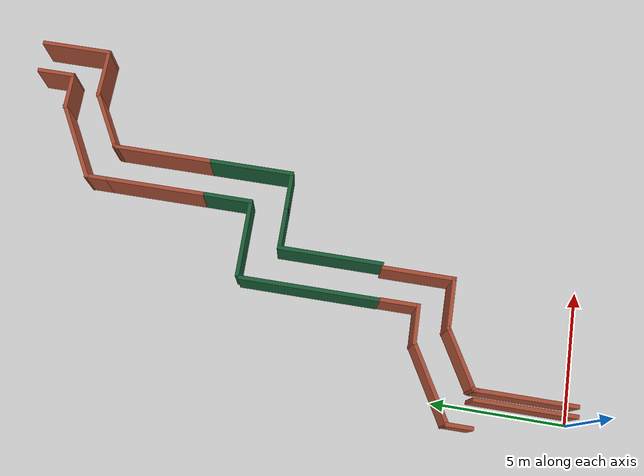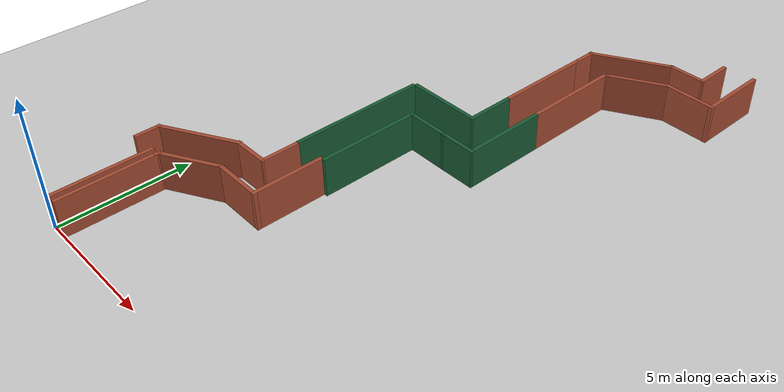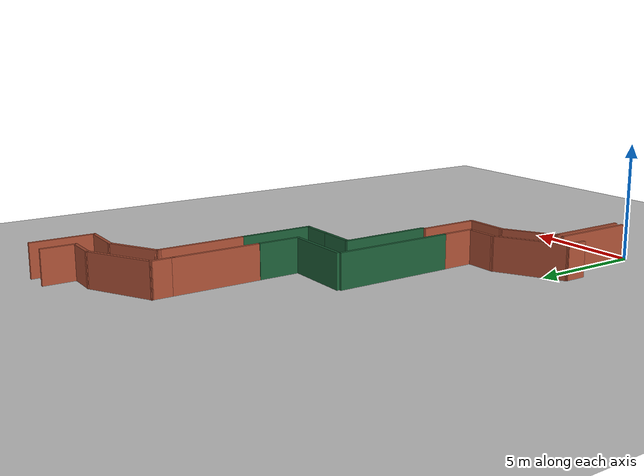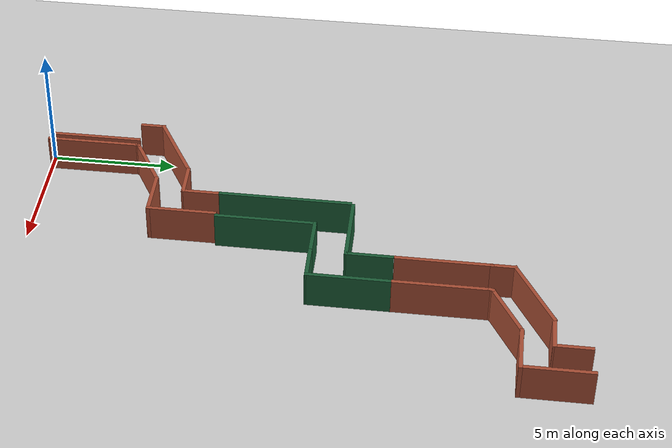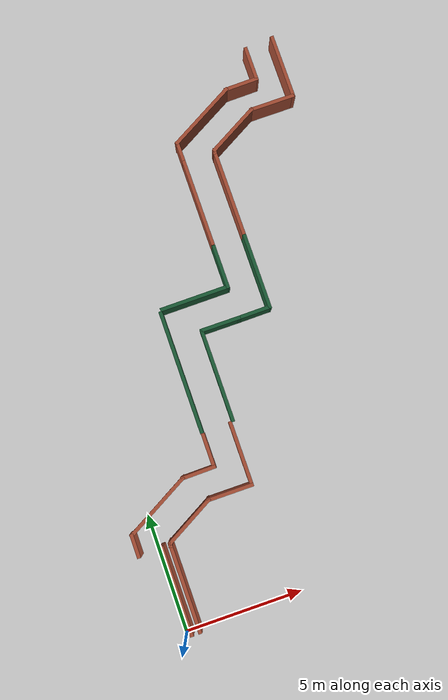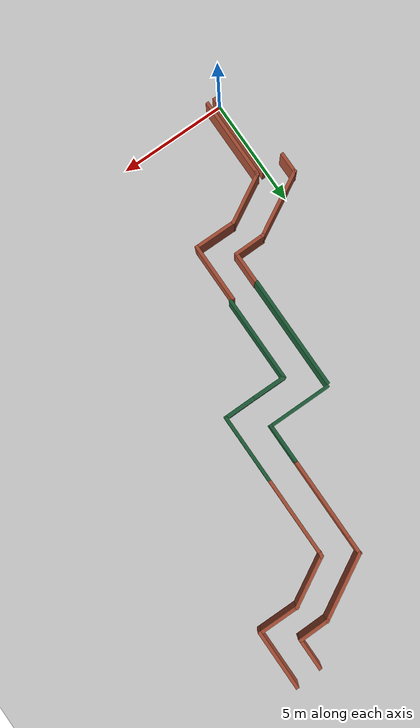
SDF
<sdf version="1.6">
 <world name="default">
  <light name="sun" type="directional">
   <pose>0 0 10 0 -0 0</pose>
   <diffuse>0.8 0.8 0.8 1</diffuse>
   <specular>0.1 0.1 0.1 1</specular>
   <attenuation>
    <range>1000</range>
    <constant>0.9</constant>
    <linear>0.01</linear>
    <quadratic>0.001</quadratic>
   </attenuation>
   <direction>-0.5 0.5 -1</direction>
  </light>
  <model name="ground_plane">
   <static>1</static>
   <link name="link">
    <collision name="collision">
     <geometry><plane><normal>0 0 1</normal><size>100 100</size></plane></geometry>
     <surface><friction><ode><mu>100</mu><mu2>50</mu2></ode></friction></surface>
    </collision>
    <visual name="visual">
     <cast_shadows>0</cast_shadows>
     <geometry><plane><normal>0 0 1</normal><size>100 100</size></plane></geometry>
     <material>
      <script><uri>file://media/materials/scripts/gazebo.material</uri><name>Gazebo/Grey</name></script>
     </material>
    </visual>
   </link>
  </model>
  <gravity>0 0 -9.8</gravity>
  <magnetic_field>6e-06 2.3e-05 -4.2e-05</magnetic_field>
  <atmosphere type="adiabatic"/>
  <physics name="default_physics" default="0" type="ode">
   <max_step_size>0.01</max_step_size>
   <real_time_factor>1</real_time_factor>
   <real_time_update_rate>0</real_time_update_rate>
  </physics>
  <scene><ambient>0.4 0.4 0.4 1</ambient><background>0.7 0.7 0.7 1</background><shadows>1</shadows></scene>
  <spherical_coordinates>
   <surface_model>EARTH_WGS84</surface_model>
   <latitude_deg>0</latitude_deg>
   <longitude_deg>0</longitude_deg>
   <elevation>0</elevation>
   <heading_deg>0</heading_deg>
  </spherical_coordinates>
  <model name="path11">
   <pose>1.84919 3.73688 0 0 -0 0</pose>
   <link name="Wall_11">
    <collision name="Wall_11_Collision">
     <geometry><box><size>3.75 0.15 1.5</size></box></geometry>
     <pose>0 0 0.75 0 -0 0</pose>
    </collision>
    <visual name="Wall_11_Visual">
     <pose>0 0 0.75 0 -0 0</pose>
     <geometry><box><size>3.75 0.15 1.5</size></box></geometry>
     <material>
      <script><uri>file://media/materials/scripts/gazebo.material</uri><name>Gazebo/Bricks</name></script>
      <ambient>1 1 1 1</ambient>
     </material>
    </visual>
    <pose>-1.59819 -1.90788 0 0 -0 1.5708</pose>
   </link>
   <link name="Wall_13">
    <collision name="Wall_13_Collision">
     <geometry><box><size>1.01982 0.15 1.5</size></box></geometry>
     <pose>0 0 0.75 0 -0 0</pose>
    </collision>
    <visual name="Wall_13_Visual">
     <pose>0 0 0.75 0 -0 0</pose>
     <geometry><box><size>1.01982 0.15 1.5</size></box></geometry>
     <material>
      <script><uri>file://media/materials/scripts/gazebo.material</uri><name>Gazebo/Bricks</name></script>
      <ambient>1 1 1 1</ambient>
     </material>
    </visual>
    <pose>-2.59819 0.327121 0 0 -0 1.5708</pose>
   </link>
   <link name="Wall_14">
    <collision name="Wall_14_Collision">
     <geometry><box><size>3.20253 0.15 1.5</size></box></geometry>
     <pose>0 0 0.75 0 -0 0</pose>
    </collision>
    <visual name="Wall_14_Visual">
     <pose>0 0 0.75 0 -0 0</pose>
     <geometry><box><size>3.20253 0.15 1.5</size></box></geometry>
     <material>
      <script><uri>file://media/materials/scripts/gazebo.material</uri><name>Gazebo/Bricks</name></script>
      <ambient>1 1 1 1</ambient>
     </material>
    </visual>
    <pose>-1.26419 1.50462 0 0 -0 0.507894</pose>
   </link>
   <link name="Wall_16">
    <collision name="Wall_16_Collision">
     <geometry><box><size>2.44292 0.15 1.5</size></box></geometry>
     <pose>0 0 0.75 0 -0 0</pose>
    </collision>
    <visual name="Wall_16_Visual">
     <pose>0 0 0.75 0 -0 0</pose>
     <geometry><box><size>2.44292 0.15 1.5</size></box></geometry>
     <material>
      <script><uri>file://media/materials/scripts/gazebo.material</uri><name>Gazebo/Bricks</name></script>
      <ambient>1 1 1 1</ambient>
     </material>
    </visual>
    <pose>-0.226693 0.530121 0 0 0 -2.63327</pose>
   </link>
   <link name="Wall_17">
    <collision name="Wall_17_Collision">
     <geometry><box><size>0.25 0.15 1.5</size></box></geometry>
     <pose>0 0 0.75 0 -0 0</pose>
    </collision>
    <visual name="Wall_17_Visual">
     <pose>0 0 0.75 0 -0 0</pose>
     <geometry><box><size>0.25 0.15 1.5</size></box></geometry>
     <material>
      <script><uri>file://media/materials/scripts/gazebo.material</uri><name>Gazebo/Bricks</name></script>
      <ambient>1 1 1 1</ambient>
     </material>
    </visual>
    <pose>-1.24119 -0.076379 0 0 0 -1.83268</pose>
   </link>
   <link name="Wall_26">
    <collision name="Wall_26_Collision">
     <geometry><box><size>1.5 0.15 1.5</size></box></geometry>
     <pose>0 0 0.75 0 -0 0</pose>
    </collision>
    <visual name="Wall_26_Visual">
     <pose>0 0 0.75 0 -0 0</pose>
     <geometry><box><size>1.5 0.15 1.5</size></box></geometry>
     <material>
      <script><uri>file://media/materials/scripts/gazebo.material</uri><name>Gazebo/Bricks</name></script>
      <ambient>1 1 1 1</ambient>
     </material>
    </visual>
    <pose>0.744807 2.25712 0 0 -0 0.014814</pose>
   </link>
   <link name="Wall_31">
    <collision name="Wall_31_Collision">
     <geometry><box><size>2 0.15 1.5</size></box></geometry>
     <pose>0 0 0.75 0 -0 0</pose>
    </collision>
    <visual name="Wall_31_Visual">
     <pose>0 0 0.75 0 -0 0</pose>
     <geometry><box><size>2 0.15 1.5</size></box></geometry>
     <material>
      <script><uri>file://media/materials/scripts/gazebo.material</uri><name>Gazebo/Bricks</name></script>
      <ambient>1 1 1 1</ambient>
     </material>
    </visual>
    <pose>1.69981 1.08812 0 0 -0 3.14159</pose>
   </link>
   <link name="Wall_33">
    <collision name="Wall_33_Collision">
     <geometry><box><size>1.5 0.15 1.5</size></box></geometry>
     <pose>0 0 0.75 0 -0 0</pose>
    </collision>
    <visual name="Wall_33_Visual">
     <pose>0 0 0.75 0 -0 0</pose>
     <geometry><box><size>1.5 0.15 1.5</size></box></geometry>
     <material>
      <script><uri>file://media/materials/scripts/gazebo.material</uri><name>Gazebo/Bricks</name></script>
      <ambient>1 1 1 1</ambient>
     </material>
    </visual>
    <pose>1.41981 2.94212 0 0 -0 1.5708</pose>
   </link>
   <link name="Wall_41">
    <collision name="Wall_41_Collision">
     <geometry><box><size>2.77018 0.15 1.5</size></box></geometry>
     <pose>0 0 0.75 0 -0 0</pose>
    </collision>
    <visual name="Wall_41_Visual">
     <pose>0 0 0.75 0 -0 0</pose>
     <geometry><box><size>2.77018 0.15 1.5</size></box></geometry>
     <material>
      <script><uri>file://media/materials/scripts/gazebo.material</uri><name>Gazebo/Bricks</name></script>
      <ambient>1 1 1 1</ambient>
     </material>
    </visual>
    <pose>2.62481 2.39812 0 0 0 -1.5708</pose>
   </link>
   <link name="Wall_9">
    <collision name="Wall_9_Collision">
     <geometry><box><size>3.73341 0.15 1.5</size></box></geometry>
     <pose>0 0 0.75 0 -0 0</pose>
    </collision>
    <visual name="Wall_9_Visual">
     <pose>0 0 0.75 0 -0 0</pose>
     <geometry><box><size>3.73341 0.15 1.5</size></box></geometry>
     <material>
      <script><uri>file://media/materials/scripts/gazebo.material</uri><name>Gazebo/Bricks</name></script>
      <ambient>1 1 1 1</ambient>
     </material>
    </visual>
    <pose>-1.25119 -1.91638 0 0 -0 1.57247</pose>
   </link>
   <static>1</static>
  </model>
  <model name="path22">
   <pose>5.40279 11.0077 0 0 -0 0</pose>
   <link name="Wall_47">
    <collision name="Wall_47_Collision">
     <geometry><box><size>4 0.15 1.5</size></box></geometry>
     <pose>0 0 0.75 0 -0 0</pose>
    </collision>
    <visual name="Wall_47_Visual">
     <pose>0 0 0.75 0 -0 0</pose>
     <geometry><box><size>4 0.15 1.5</size></box></geometry>
     <material>
      <script><uri>file://media/materials/scripts/gazebo.material</uri><name>Gazebo/Grey</name></script>
      <ambient>0.101961 0.356863 0.207843 1</ambient>
     </material>
    </visual>
    <pose>-0.800103 -1.54298 0 0 -0 1.5708</pose>
   </link>
   <link name="Wall_51">
    <collision name="Wall_51_Collision">
     <geometry><box><size>1.75 0.15 1.5</size></box></geometry>
     <pose>0 0 0.75 0 -0 0</pose>
    </collision>
    <visual name="Wall_51_Visual">
     <pose>0 0 0.75 0 -0 0</pose>
     <geometry><box><size>1.75 0.15 1.5</size></box></geometry>
     <material>
      <script><uri>file://media/materials/scripts/gazebo.material</uri><name>Gazebo/Grey</name></script>
      <ambient>0.101961 0.356863 0.207843 1</ambient>
     </material>
    </visual>
    <pose>-0.000103 0.382018 0 0 -0 0</pose>
   </link>
   <link name="Wall_54">
    <collision name="Wall_54_Collision">
     <geometry><box><size>3.00003 0.15 1.5</size></box></geometry>
     <pose>0 0 0.75 0 -0 0</pose>
    </collision>
    <visual name="Wall_54_Visual">
     <pose>0 0 0.75 0 -0 0</pose>
     <geometry><box><size>3.00003 0.15 1.5</size></box></geometry>
     <material>
      <script><uri>file://media/materials/scripts/gazebo.material</uri><name>Gazebo/Grey</name></script>
      <ambient>0.101961 0.356863 0.207843 1</ambient>
     </material>
    </visual>
    <pose>-0.625103 1.73863 0 0 0 -3.13695</pose>
   </link>
   <link name="Wall_56">
    <collision name="Wall_56_Collision">
     <geometry><box><size>5.25 0.15 1.5</size></box></geometry>
     <pose>0 0 0.75 0 -0 0</pose>
    </collision>
    <visual name="Wall_56_Visual">
     <pose>0 0 0.75 0 -0 0</pose>
     <geometry><box><size>5.25 0.15 1.5</size></box></geometry>
     <material>
      <script><uri>file://media/materials/scripts/gazebo.material</uri><name>Gazebo/Grey</name></script>
      <ambient>0.101961 0.356863 0.207843 1</ambient>
     </material>
    </visual>
    <pose>-2.1501 -0.944431 0 0 -0 1.5708</pose>
   </link>
   <link name="Wall_58">
    <collision name="Wall_58_Collision">
     <geometry><box><size>1.49958 0.15 1.5</size></box></geometry>
     <pose>0 0 0.75 0 -0 0</pose>
    </collision>
    <visual name="Wall_58_Visual">
     <pose>0 0 0.75 0 -0 0</pose>
     <geometry><box><size>1.49958 0.15 1.5</size></box></geometry>
     <material>
      <script><uri>file://media/materials/scripts/gazebo.material</uri><name>Gazebo/Grey</name></script>
      <ambient>0.101961 0.356863 0.207843 1</ambient>
     </material>
    </visual>
    <pose>1.47466 0.388225 0 0 -0 0.009198</pose>
   </link>
   <link name="Wall_59">
    <collision name="Wall_59_Collision">
     <geometry><box><size>3.25 0.15 1.5</size></box></geometry>
     <pose>0 0 0.75 0 -0 0</pose>
    </collision>
    <visual name="Wall_59_Visual">
     <pose>0 0 0.75 0 -0 0</pose>
     <geometry><box><size>3.25 0.15 1.5</size></box></geometry>
     <material>
      <script><uri>file://media/materials/scripts/gazebo.material</uri><name>Gazebo/Grey</name></script>
      <ambient>0.101961 0.356863 0.207843 1</ambient>
     </material>
    </visual>
    <pose>2.14941 1.94443 0 0 -0 1.5708</pose>
   </link>
   <link name="Wall_65">
    <collision name="Wall_65_Collision">
     <geometry><box><size>1.88678 0.15 1.5</size></box></geometry>
     <pose>0 0 0.75 0 -0 0</pose>
    </collision>
    <visual name="Wall_65_Visual">
     <pose>0 0 0.75 0 -0 0</pose>
     <geometry><box><size>1.88678 0.15 1.5</size></box></geometry>
     <material>
      <script><uri>file://media/materials/scripts/gazebo.material</uri><name>Gazebo/Grey</name></script>
      <ambient>0.101961 0.356863 0.207843 1</ambient>
     </material>
    </visual>
    <pose>0.799897 2.61363 0 0 0 -1.5708</pose>
   </link>
   <static>1</static>
  </model>
  <model name="path11_0">
   <pose>8.79815 18.362 0 0 -0 0</pose>
   <link name="Wall_11">
    <collision name="Wall_11_Collision">
     <geometry><box><size>3.75 0.15 1.5</size></box></geometry>
     <pose>0 0 0.75 0 -0 0</pose>
    </collision>
    <visual name="Wall_11_Visual">
     <pose>0 0 0.75 0 -0 0</pose>
     <geometry><box><size>3.75 0.15 1.5</size></box></geometry>
     <material>
      <script><uri>file://media/materials/scripts/gazebo.material</uri><name>Gazebo/Bricks</name></script>
      <ambient>1 1 1 1</ambient>
     </material>
    </visual>
    <pose>-2.59819 -1.90788 0 0 -0 1.5708</pose>
   </link>
   <link name="Wall_13">
    <collision name="Wall_13_Collision">
     <geometry><box><size>1.01982 0.15 1.5</size></box></geometry>
     <pose>0 0 0.75 0 -0 0</pose>
    </collision>
    <visual name="Wall_13_Visual">
     <pose>0 0 0.75 0 -0 0</pose>
     <geometry><box><size>1.01982 0.15 1.5</size></box></geometry>
     <material>
      <script><uri>file://media/materials/scripts/gazebo.material</uri><name>Gazebo/Bricks</name></script>
      <ambient>1 1 1 1</ambient>
     </material>
    </visual>
    <pose>-2.59819 0.327121 0 0 -0 1.5708</pose>
   </link>
   <link name="Wall_14">
    <collision name="Wall_14_Collision">
     <geometry><box><size>3.20253 0.15 1.5</size></box></geometry>
     <pose>0 0 0.75 0 -0 0</pose>
    </collision>
    <visual name="Wall_14_Visual">
     <pose>0 0 0.75 0 -0 0</pose>
     <geometry><box><size>3.20253 0.15 1.5</size></box></geometry>
     <material>
      <script><uri>file://media/materials/scripts/gazebo.material</uri><name>Gazebo/Bricks</name></script>
      <ambient>1 1 1 1</ambient>
     </material>
    </visual>
    <pose>-1.26419 1.50462 0 0 -0 0.507894</pose>
   </link>
   <link name="Wall_16">
    <collision name="Wall_16_Collision">
     <geometry><box><size>2.44292 0.15 1.5</size></box></geometry>
     <pose>0 0 0.75 0 -0 0</pose>
    </collision>
    <visual name="Wall_16_Visual">
     <pose>0 0 0.75 0 -0 0</pose>
     <geometry><box><size>2.44292 0.15 1.5</size></box></geometry>
     <material>
      <script><uri>file://media/materials/scripts/gazebo.material</uri><name>Gazebo/Bricks</name></script>
      <ambient>1 1 1 1</ambient>
     </material>
    </visual>
    <pose>-0.226693 0.530121 0 0 0 -2.63327</pose>
   </link>
   <link name="Wall_17">
    <collision name="Wall_17_Collision">
     <geometry><box><size>0.25 0.15 1.5</size></box></geometry>
     <pose>0 0 0.75 0 -0 0</pose>
    </collision>
    <visual name="Wall_17_Visual">
     <pose>0 0 0.75 0 -0 0</pose>
     <geometry><box><size>0.25 0.15 1.5</size></box></geometry>
     <material>
      <script><uri>file://media/materials/scripts/gazebo.material</uri><name>Gazebo/Bricks</name></script>
      <ambient>1 1 1 1</ambient>
     </material>
    </visual>
    <pose>-1.24119 -0.076379 0 0 0 -1.83268</pose>
   </link>
   <link name="Wall_26">
    <collision name="Wall_26_Collision">
     <geometry><box><size>1.5 0.15 1.5</size></box></geometry>
     <pose>0 0 0.75 0 -0 0</pose>
    </collision>
    <visual name="Wall_26_Visual">
     <pose>0 0 0.75 0 -0 0</pose>
     <geometry><box><size>1.5 0.15 1.5</size></box></geometry>
     <material>
      <script><uri>file://media/materials/scripts/gazebo.material</uri><name>Gazebo/Bricks</name></script>
      <ambient>1 1 1 1</ambient>
     </material>
    </visual>
    <pose>0.744807 2.25712 0 0 -0 0.014814</pose>
   </link>
   <link name="Wall_31">
    <collision name="Wall_31_Collision">
     <geometry><box><size>2 0.15 1.5</size></box></geometry>
     <pose>0 0 0.75 0 -0 0</pose>
    </collision>
    <visual name="Wall_31_Visual">
     <pose>0 0 0.75 0 -0 0</pose>
     <geometry><box><size>2 0.15 1.5</size></box></geometry>
     <material>
      <script><uri>file://media/materials/scripts/gazebo.material</uri><name>Gazebo/Bricks</name></script>
      <ambient>1 1 1 1</ambient>
     </material>
    </visual>
    <pose>1.69981 1.08812 0 0 -0 3.14159</pose>
   </link>
   <link name="Wall_33">
    <collision name="Wall_33_Collision">
     <geometry><box><size>1.5 0.15 1.5</size></box></geometry>
     <pose>0 0 0.75 0 -0 0</pose>
    </collision>
    <visual name="Wall_33_Visual">
     <pose>0 0 0.75 0 -0 0</pose>
     <geometry><box><size>1.5 0.15 1.5</size></box></geometry>
     <material>
      <script><uri>file://media/materials/scripts/gazebo.material</uri><name>Gazebo/Bricks</name></script>
      <ambient>1 1 1 1</ambient>
     </material>
    </visual>
    <pose>1.41981 2.94212 0 0 -0 1.5708</pose>
   </link>
   <link name="Wall_41">
    <collision name="Wall_41_Collision">
     <geometry><box><size>2.77018 0.15 1.5</size></box></geometry>
     <pose>0 0 0.75 0 -0 0</pose>
    </collision>
    <visual name="Wall_41_Visual">
     <pose>0 0 0.75 0 -0 0</pose>
     <geometry><box><size>2.77018 0.15 1.5</size></box></geometry>
     <material>
      <script><uri>file://media/materials/scripts/gazebo.material</uri><name>Gazebo/Bricks</name></script>
      <ambient>1 1 1 1</ambient>
     </material>
    </visual>
    <pose>2.62481 2.39812 0 0 0 -1.5708</pose>
   </link>
   <link name="Wall_9">
    <collision name="Wall_9_Collision">
     <geometry><box><size>3.73341 0.15 1.5</size></box></geometry>
     <pose>0 0 0.75 0 -0 0</pose>
    </collision>
    <visual name="Wall_9_Visual">
     <pose>0 0 0.75 0 -0 0</pose>
     <geometry><box><size>3.73341 0.15 1.5</size></box></geometry>
     <material>
      <script><uri>file://media/materials/scripts/gazebo.material</uri><name>Gazebo/Bricks</name></script>
      <ambient>1 1 1 1</ambient>
     </material>
    </visual>
    <pose>-1.25119 -1.91638 0 0 -0 1.57247</pose>
   </link>
   <static>1</static>
  </model>
 </world>
</sdf>
